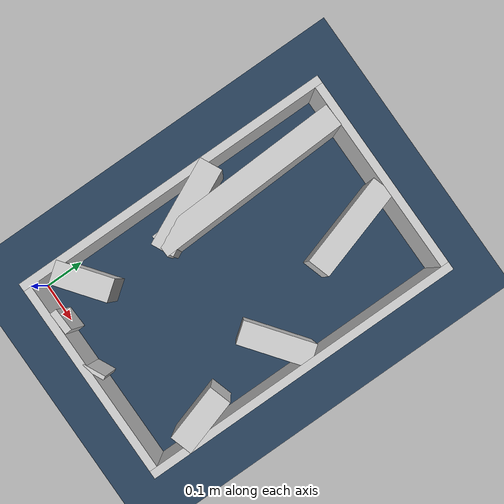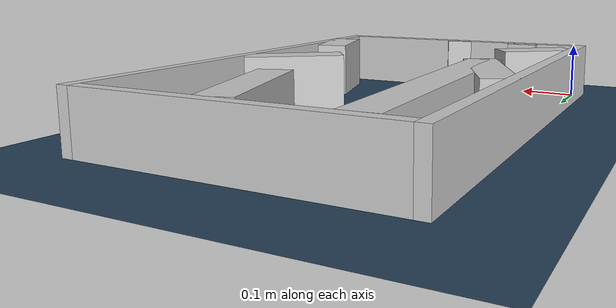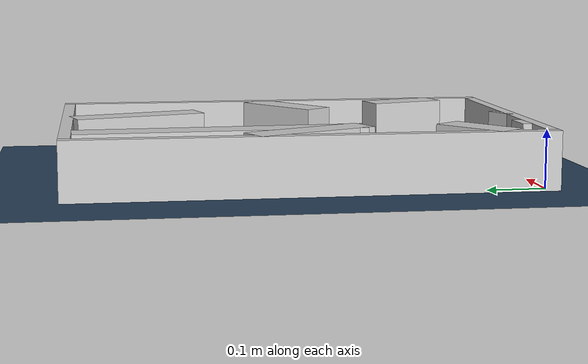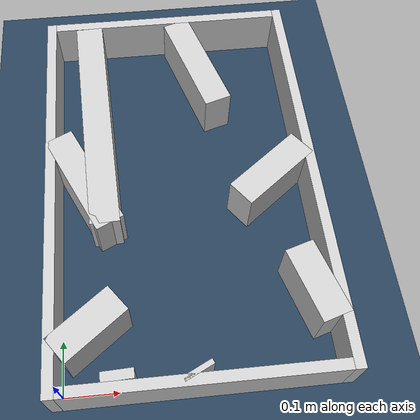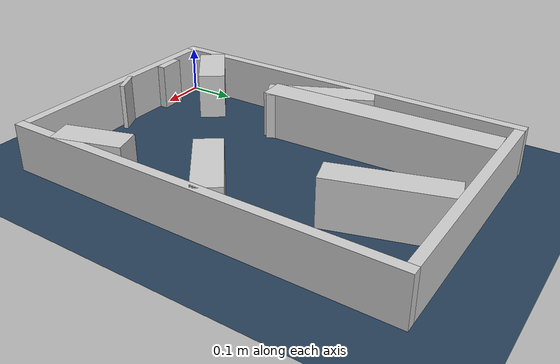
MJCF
<?xml version="1.0" ?>
<mujoco model="generated_real_template">
  <compiler angle="degree"/>
  <option timestep="0.002" integrator="implicitfast" iterations="100" cone="elliptic"/>
  <default>
    <geom density="1"/>
  </default>
  <asset>
    <texture builtin="gradient" height="3072" rgb1="0.3 0.5 0.7" rgb2="0 0 0" type="skybox" width="512"/>
    <texture builtin="checker" height="300" mark="edge" markrgb="0.8 0.8 0.8" name="groundplane" rgb1="0.2 0.3 0.4" rgb2="0.1 0.2 0.3" type="2d" width="300"/>
    <material name="groundplane" reflectance="0.2" texrepeat="5 5" texture="groundplane" texuniform="true"/>
  </asset>
  <worldbody>
    <light dir="0 0 -1" directional="true" pos="0 0 1.5"/>
    <geom name="floor" type="plane" condim="4" friction="0.5 0.005 0.001" material="groundplane" size="0 0 0.05"/>
    <body name="walls">
      <geom name="wall_boundary_left" type="box" condim="4" friction="1.0 0.005 0.0001" rgba="0.8 0.8 0.8 1" pos="-0.010000 0.387500 0.050000" euler="0 0 0.000000" size="0.010000 0.407500 0.050000"/>
      <geom name="wall_boundary_right" type="box" condim="4" friction="1.0 0.005 0.0001" rgba="0.8 0.8 0.8 1" pos="0.500000 0.387500 0.050000" euler="0 0 0.000000" size="0.010000 0.407500 0.050000"/>
      <geom name="wall_boundary_bottom" type="box" condim="4" friction="1.0 0.005 0.0001" rgba="0.8 0.8 0.8 1" pos="0.245000 -0.010000 0.050000" euler="0 0 0.000000" size="0.245000 0.010000 0.050000"/>
      <geom name="wall_boundary_top" type="box" condim="4" friction="1.0 0.005 0.0001" rgba="0.8 0.8 0.8 1" pos="0.245000 0.785000 0.050000" euler="0 0 0.000000" size="0.245000 0.010000 0.050000"/>
      <geom name="wall_inner_1_1" type="box" condim="4" friction="1.0 0.005 0.0001" rgba="0.8 0.8 0.8 1" pos="0.236005 0.004294 0.050000" euler="0 0 115.499970" size="0.004757 0.028500 0.050000"/>
      <geom name="wall_inner_1_2" type="box" condim="4" friction="1.0 0.005 0.0001" rgba="0.8 0.8 0.8 1" pos="0.053833 0.386224 0.050000" euler="0 0 115.499970" size="0.111748 0.028500 0.050000"/>
      <geom name="wall_inner_2_1" type="box" condim="4" friction="1.0 0.005 0.0001" rgba="0.8 0.8 0.8 1" pos="0.055073 0.098645 0.050000" euler="0 0 37.116072" size="0.069065 0.028500 0.050000"/>
      <geom name="wall_inner_2_2" type="box" condim="4" friction="1.0 0.005 0.0001" rgba="0.8 0.8 0.8 1" pos="0.420526 0.375196 0.050000" euler="0 0 37.116072" size="0.087124 0.028500 0.050000"/>
      <geom name="wall_inner_3_1" type="box" condim="4" friction="1.0 0.005 0.0001" rgba="0.8 0.8 0.8 1" pos="0.461835 0.138609 0.050000" euler="0 0 106.941158" size="0.071729 0.028500 0.050000"/>
      <geom name="wall_inner_3_2" type="box" condim="4" friction="1.0 0.005 0.0001" rgba="0.8 0.8 0.8 1" pos="0.302423 0.661941 0.050000" euler="0 0 106.941158" size="0.118188 0.028500 0.050000"/>
      <geom name="wall_inner_4_1" type="box" condim="4" friction="1.0 0.005 0.0001" rgba="0.8 0.8 0.8 1" pos="0.102554 0.008812 0.050000" euler="0 0 92.183009" size="0.008818 0.028500 0.050000"/>
      <geom name="wall_inner_4_2" type="box" condim="4" friction="1.0 0.005 0.0001" rgba="0.8 0.8 0.8 1" pos="0.082660 0.530693 0.050000" euler="0 0 92.183009" size="0.244484 0.028500 0.050000"/>
    </body>
  </worldbody>
</mujoco>
